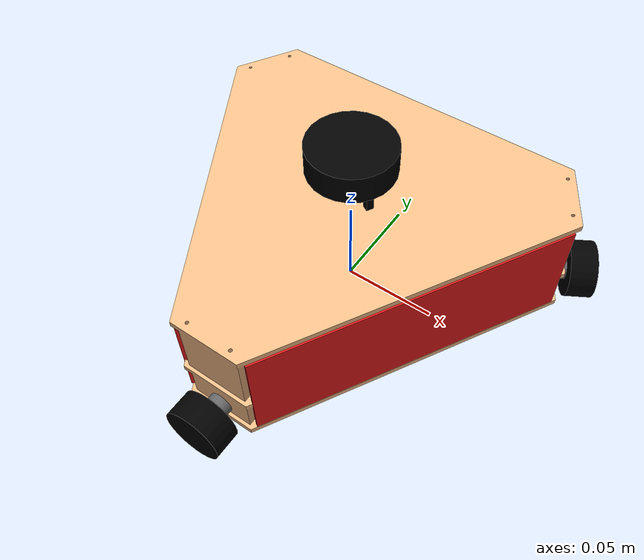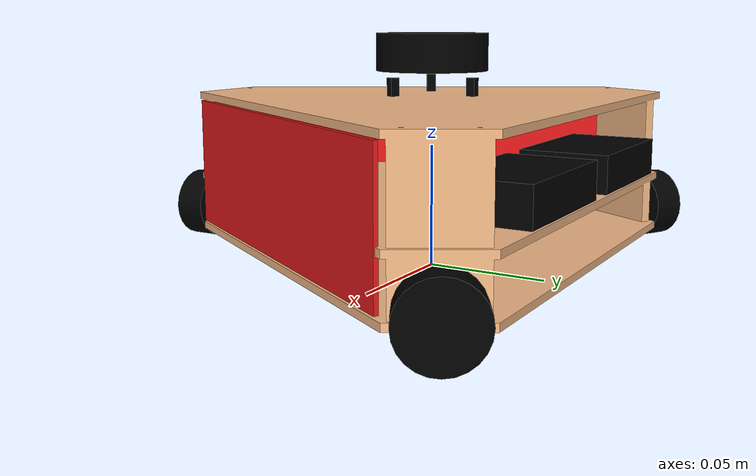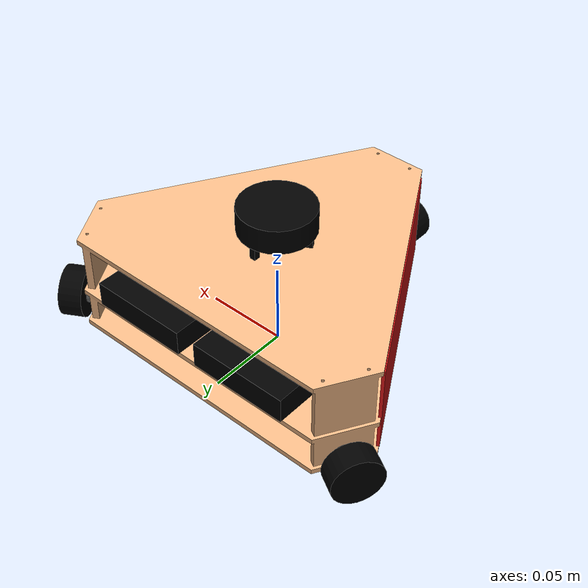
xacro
<?xml version="1.0"?>
<robot name="dora" xmlns:xacro="http://www.ros.org/wiki/xacro">

    <!-- Original body height = 0.103. Changed due to STL height being smaller than actual-->
    <xacro:property name="body_scale" value="0.6"/>

    <xacro:property name="body_height" value="${body_scale * 0.10}" />
    <xacro:property name="body_to_floor" value="${body_scale * 0.00}" />

    <xacro:property name="axle_to_center_dist" value="${body_scale * 0.175}" />
    <xacro:property name="wheel_axle_length" value="${body_scale * 0.013}" />
    <xacro:property name="wheel_axle_radius" value="${body_scale * 0.01}" />
    <xacro:property name="wheel_diameter" value="${body_scale * 0.05}" />
    <xacro:property name="wheel_width" value="${body_scale * 0.023}" />

    <xacro:property name="lidar_distance" value="${body_scale * 0.04}" />
    <xacro:property name="lidar_height" value="${body_scale * 0.025}" />
    <xacro:property name="lidar_width" value="${body_scale * 0.075}" />

    <xacro:property name="lidar_rod_to_center_dist" value="${body_scale * 0.030}" />
    <xacro:property name="lidar_rod_height" value="${body_scale * 0.02}" />
    <xacro:property name="lidar_rod_size" value="${body_scale * lidar_rod_height} ${body_scale * 0.006} ${body_scale * 0.006}" />
    <xacro:property name="lidar_rod_to_base_dist" value="${body_scale * 0.075}" />

    <xacro:property name="wall_to_center_dist" value="${body_scale * 0.115}" />
    <xacro:property name="wall_size" value="${body_scale * 0.090} ${body_scale * 0.270} ${body_scale * 0.003}" />

    <xacro:property name="camera_to_center_dist" value="${body_scale * 0.090}" />
    <xacro:property name="camera_dist_between" value="${body_scale * 0.060}" />
    <xacro:property name="camera_elevation" value="${body_scale * 0.007}" />
    <xacro:property name="camera_size" value="${body_scale * 0.025} ${body_scale * 0.100} ${body_scale * 0.06}" />

    <!-- URDF preview defaults package://cotroller to the currently opened folder.
     Insert this path after it and before res when you /ros2_ws/src/controller -->>
    <xacro:property name="mesh_path" value="package://controller/res/dora_vaz.stl" />
    <xacro:property name="stl_offset" value="${body_scale * 0.014}" />

    <!-- TODO: scale down mesh in stl -->
    <xacro:property name="mesh_scale" value="${body_scale * 0.001} ${body_scale * 0.001} ${body_scale * 0.001}" />

    <!-- Colors and Materials -->
    <material name="black">
        <color rgba="0 0 0 1" />
    </material>

    <material name="wood">
        <color rgba="0.96 0.73 0.53 1" />
    </material>

    <material name="metal">
        <color rgba="0.4 0.4 0.4 1" />
    </material>

    <material name="red">
        <color rgba="0.9 0.1 0.1 1" />
    </material>

    <!-- Wall -->
    <xacro:macro name="wall" params="idx">
    <xacro:property name="angle" value='${pi / 2 + 2 * pi * idx / 3}' />
        <link name="wall_link_${idx}">
            <visual>
                <origin xyz="0 0 0" rpy="0 0 0" />
                <geometry>
                    <box size="${wall_size}"/>
                </geometry>
                <material name="red" />
            </visual>
        </link>

        <joint name="wall_joint_${idx}" type="fixed">
            <parent link="base_link"/>
            <child link="wall_link_${idx}"/>
            <origin
                xyz="${cos(angle) * wall_to_center_dist} ${sin(angle) * wall_to_center_dist} ${stl_offset}"
                rpy="${0.5 * pi} ${0.5 * pi} ${angle - 0.5 * pi}"
            />
        </joint>
    </xacro:macro>

    <!-- Lidar rod -->
    <xacro:macro name="lidar_rod" params="idx">
        <xacro:property name="angle" value='${pi / 2 + 2 * pi * idx / 3}' />
        <!-- No need for new links to contain the rods -->
            <visual>
                <origin
                    xyz="${cos(angle) * lidar_rod_to_center_dist} ${sin(angle) * lidar_rod_to_center_dist} ${lidar_rod_height/2}"
                    rpy="${0.5 * pi} ${0.5 * pi} ${angle - 0.5 * pi}"
                />

                <geometry>
                    <box size="${lidar_rod_size}"/>
                </geometry>

                <material name="black" />
            </visual>
    </xacro:macro>

    <!-- Base link -->
    <link name="base_link">
        <visual>
            <origin xyz="0 0 0" rpy="0 0 ${pi / 3}" />
            <geometry>
                <mesh filename="${mesh_path}" scale="${mesh_scale}" />
            </geometry>

            <material name="wood"/>
        </visual>

        <collision>
            <origin xyz="0 0 0" rpy="0 0 ${pi / 3}" />
            <geometry>
                <mesh filename="${mesh_path}" scale="${mesh_scale}" />
            </geometry>
        </collision>
    </link>

    <!-- Base footprint -->
    <link name="base_footprint">
        <visual>
            <geometry>
                <cylinder length="0.005" radius="0.005"/>
            </geometry>
            <material name="red"/>
        </visual>
    </link>

    <joint name="base_footprint_joint" type="fixed">
        <parent link="base_footprint"/>
        <child link="base_link"/>
        <origin xyz="0 0 ${body_to_floor + body_height / 2}" rpy="0 0 0"/>
    </joint>

    <!-- Lidar head -->
    <link name="lidar_head">
        <visual>
            <origin xyz="0 0 ${lidar_height / 2}" rpy="0 0 ${-pi / 2}"/>

            <geometry>
                <cylinder length="${lidar_height}" radius="${lidar_width/2}" />
            </geometry>

            <material name="black"/>
        </visual>

        <collision>
            <origin xyz="0 0 ${lidar_height / 2}" rpy="0 0 ${pi / 3}" />

            <geometry>
                <cylinder length="${lidar_height}" radius="${lidar_width/2}" />
            </geometry>
        </collision>
    </link>

    <!-- Lidar motor -->
    <joint name="lidar_joint" type="continuous">
        <parent link="lidar_rods" />
        <child link="lidar_head" />
        <origin xyz="0 0 ${lidar_rod_height}" />
        <axis xyz="0 0 ${pi/2}" />
    </joint>

    <!-- Lidar rods -->>
    <link name="lidar_rods">
        <xacro:lidar_rod idx="0" />
        <xacro:lidar_rod idx="1" />
        <xacro:lidar_rod idx="2" />
    </link>

    <!-- Lidar rods' joint -->
     <joint name="rod_joint" type="fixed">
        <parent link="base_link"/>
        <child link="lidar_rods"/>
        <origin xyz="0 0 ${body_height/2 + stl_offset}"/>
    </joint>

    <!-- Laser frame for SLAM -->
    <link name="laser"></link>

    <joint name="laser_joint" type="fixed">
        <parent link="lidar_head"/>
        <child link="laser"/>
    </joint>

    <!-- Wheels -->
    <xacro:macro name="omniwheel" params="idx">
        <xacro:property name="angle" value='${pi / 6 + 2 * pi * idx / 3}' />

        <joint name="wheel_joint_${idx}" type="fixed">
            <parent link="wheel_axle_${idx}" />
            <child link="wheel_${idx}" />
            <origin
                xyz="0 0 ${-wheel_axle_length}"
                rpy="0 0 0"
            />
            <axis xyz="0 0 0" />
        </joint>

        <joint name="wheel_axle_joint_${idx}" type="continuous">
            <parent link="base_link" />
            <child link="wheel_axle_${idx}" />
            <origin
                xyz="${cos(angle) * axle_to_center_dist} ${sin(angle) * axle_to_center_dist} ${-wheel_diameter/2}"
                rpy="${0.5 * pi} ${0.5 * pi} ${angle - 0.5 * pi}"
            />
            <axis xyz="0 0 ${pi/2}"/>
        </joint>

        <link name="wheel_axle_${idx}">
            <visual>
                <origin xyz="0 0 ${-wheel_axle_length/2}"/>

                <geometry>
                    <cylinder radius="${wheel_axle_radius}" length="${wheel_axle_length}" />
                </geometry>

                <material name="metal" />
            </visual>
        </link>

        <link name="wheel_${idx}">
            <visual>
                <origin xyz="0 0 -${wheel_width/2}" />

                <geometry>
                    <cylinder radius="${wheel_diameter / 2}" length="${wheel_width}" />
                </geometry>

                <material name="black" />
            </visual>

            <collision>
                <origin xyz="0 0 -${wheel_width/2}" />

                <geometry>
                    <cylinder radius="${wheel_diameter / 2}" length="${wheel_width}" />
                </geometry>
            </collision>
        </link>
    </xacro:macro>

    <!-- Camera -->
    <xacro:macro name="camera" params="idx">
        <xacro:property name="angle" value='${pi / 2 + 2 * pi * idx / 3}' />

        <joint name="camera_joint_${idx}" type="fixed">
            <parent link="base_link" />
            <child link="camera_${idx}" />
            <origin
                xyz="${cos(angle) * camera_to_center_dist} ${sin(angle) * camera_to_center_dist} ${stl_offset+camera_elevation}"
                rpy="0 0 0"
            />
            <axis xyz="${cos(angle)} ${sin(angle)} 0" />
        </joint>

        <link name="camera_${idx}">
            <visual>
                <!-- If you need an explanation for this formula, please check out BME VIK's Grafika course -->
                <origin xyz="${-sin(angle)*camera_dist_between} ${cos(angle)*camera_dist_between} 0" rpy="${0.5 * pi} ${0.5 * pi} ${angle - 0.5 * pi}" />

                <geometry>
                    <box size="${camera_size}"/>
                </geometry>

                <material name="black" />
            </visual>

            <visual>
                <origin xyz="${-sin(angle)*(-camera_dist_between)} ${cos(angle)*(-camera_dist_between)} 0" rpy="${0.5 * pi} ${0.5 * pi} ${angle - 0.5 * pi}" />

                <geometry>
                    <box size="${camera_size}"/>
                </geometry>

                <material name="black" />
            </visual>
        </link>

    </xacro:macro>

    <!-- Calling macros -->
    <xacro:omniwheel idx="0" />
    <xacro:omniwheel idx="1" />
    <xacro:omniwheel idx="2" />
    <xacro:camera idx="0" />
    <xacro:wall idx="1" />
    <xacro:wall idx="2" />
</robot>
